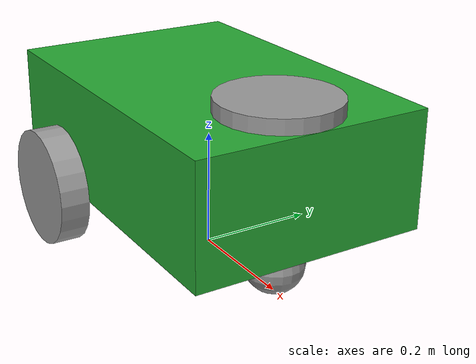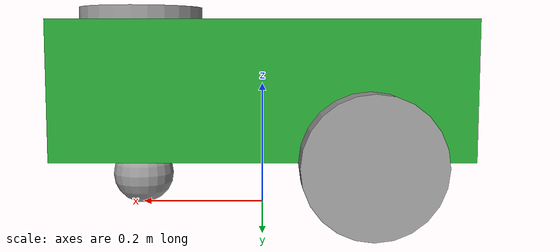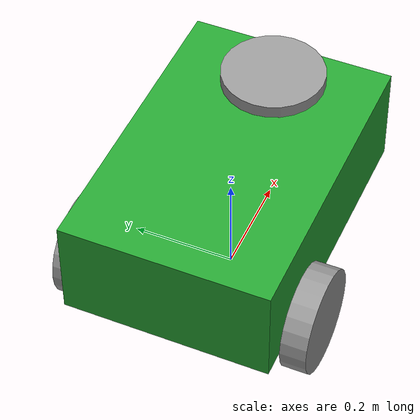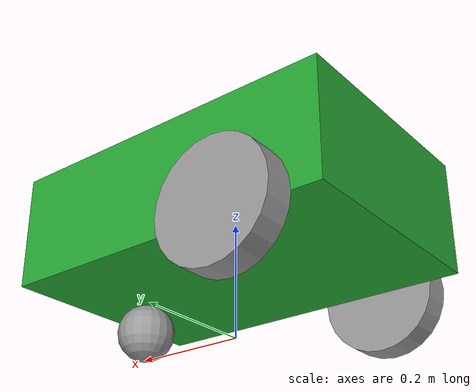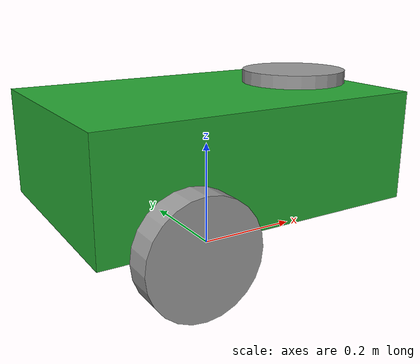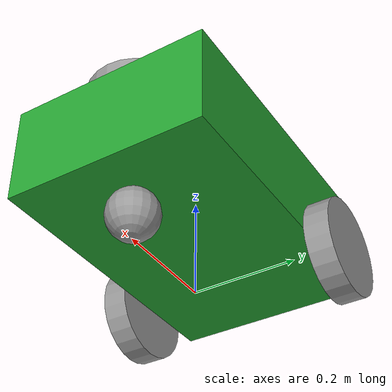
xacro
<?xml version="1.0"?>
<robot xmlns:xacro="http://www.ros.org/wiki/xacro">
    <xacro:property name="base_length" value="0.6" />
    <xacro:property name="base_width" value="0.4" />
    <xacro:property name="base_height" value="0.2"  />
    <xacro:property name="wheel_radius" value="0.1" />
    <xacro:property name="wheel_length" value="0.05" />

    <xacro:macro name="wheel_link" params="prefix">
        <link name="${prefix}_wheel_link">
            <visual>
                <geometry>
                    <cylinder radius="${wheel_radius}" length="${wheel_length}" />
                </geometry>
                <origin xyz=" 0 0 0 " rpy="${pi / 2.0} 0 0 " />
                <material name="gray" />
            </visual>
            <collision>
                <geometry>
                    <sphere radius="${wheel_radius}" />
                </geometry>
                <origin xyz="0 0 0" rpy="0 0 0" />
            </collision>
            <xacro:cylinder_inertia m="1.0" r="${wheel_radius}" l="${wheel_length}" o_xyz="0 0 0" o_rpy="${pi / 2.0} 0 0"/>
        </link>
    </xacro:macro>

    <!-- Added a lidar link macro-->
    <xacro:macro name="lidar_link" params="suffix">
        <link name="lidar_${suffix}">
            <visual>
                <geometry>
                    <cylinder radius="${wheel_radius}" length="${wheel_length}" />
                </geometry>
                <origin xyz=" 0 0 0 " rpy="0 0 0" />
                <material name="gray" />
            </visual>
            <collision>
                <geometry>
                    <cylinder radius="${wheel_radius}" length="${wheel_length}" />
                </geometry>
                <origin xyz="0 0 0" rpy="0 0 0" />
            </collision>
            <xacro:cylinder_inertia m="1.0" r="${wheel_radius}" l="${wheel_length}" o_xyz="0 0 0" o_rpy="0 0 0"/>
        </link>
    </xacro:macro>

    <link name="base_footprint" />

    <joint name="base_joint" type="fixed">
        <parent link="base_footprint" />
        <child link="base_link" />
        <origin xyz="0 0 ${wheel_radius}" rpy="0 0 0" />
    </joint>

    <link name="base_link">
        <visual>
            <geometry>
                <box size="${base_length} ${base_width} ${base_height}" />
            </geometry>
            <origin xyz="0 0 ${base_height / 2.0}" rpy="0 0 0" />
            <material name="green" />
        </visual>
        <collision>
            <geometry>
                <box size="${base_length} ${base_width} ${base_height}" />
            </geometry>
            <origin xyz="0 0 ${base_height /2.0}" rpy="0 0 0" />
        </collision>

        <xacro:box_inertia m="5.0" x="${base_length}" y="${base_width}" z="${base_height}" o_xyz="0 0 ${base_height / 2.0}" o_rpy="0 0 0" />

    </link>

    <xacro:wheel_link prefix="right" />
    <xacro:wheel_link prefix="left"  />
    <xacro:lidar_link suffix="0"  />

    <joint name="base_right_wheel_joint" type="continuous">
        <parent link="base_link" />
        <child link="right_wheel_link" />
        <origin xyz="${-base_length / 4.0} ${-(base_width + wheel_length) / 2.0} 0" rpy="0 0 0" />
        <axis xyz=" 0 1 0 " />
    </joint>

    <joint name="base_left_wheel_joint" type="continuous">
        <parent link="base_link" />
        <child link="left_wheel_link" />
        <origin xyz="${-base_length / 4.0} ${(base_width + wheel_length) / 2.0} 0" rpy="0 0 0" />
        <axis xyz=" 0 1 0 " />
    </joint>

    <joint name="base_lidar_joint" type="fixed">
        <parent link="base_link" />
        <child link="lidar_0" />
        <origin xyz="${base_length / 3.0} 0 ${base_height}" rpy="0 0 0" />
        <axis xyz=" 0 1 0 " />
    </joint>

    <link name="caster_wheel_link">
        <visual>
            <geometry>
                <sphere radius="${wheel_radius / 2.0}" />
            </geometry>
            <origin xyz=" 0 0 0" rpy=" 0 0 0 " />
            <material name="gray" />
        </visual>
        <collision>
            <geometry>
                <sphere radius="${wheel_radius / 2.0}" />
            </geometry>
            <origin xyz="0 0 0" rpy="0 0 0" />
        </collision>
        <xacro:sphere_inertia m="0.5" r="${wheel_radius / 2.0}"
                              o_xyz="0 0 0" o_rpy="0 0 0"/>
    </link>

    <joint name="base_caster_wheel_joint" type="fixed">
        <parent link="base_link" />
        <child link="caster_wheel_link" />
        <origin xyz=" ${base_length / 3.0} 0 ${-wheel_radius / 2.0} " rpy=" 0 0 0 " />
    </joint>
</robot>
